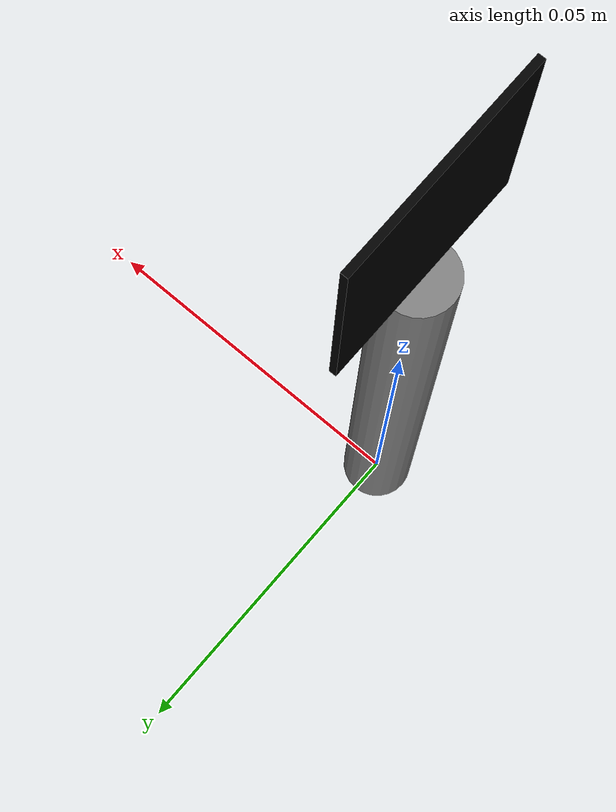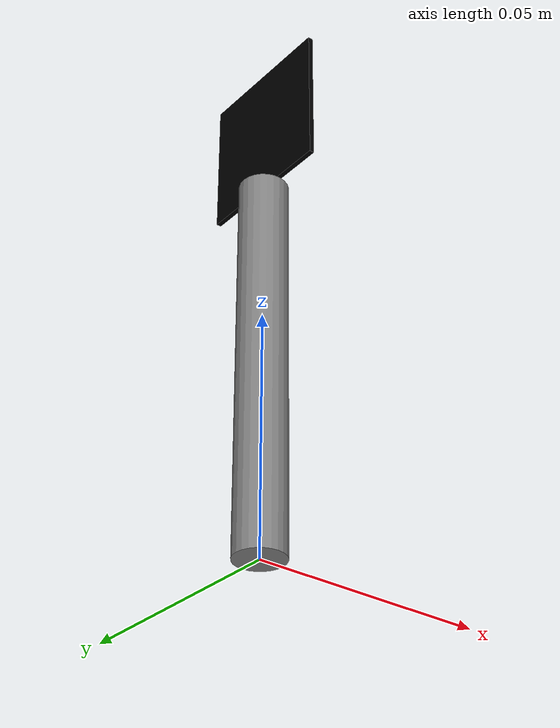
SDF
<?xml version="1.0" ?>
<sdf version="1.8">
  <model name="stop_sign">
    <static>true</static>

    <link name="pole">
      <pose>0 0 0.04 0 0 0</pose>
      <collision name="col">
        <geometry><cylinder><radius>0.005</radius><length>0.08</length></cylinder></geometry>
      </collision>
      <visual name="vis">
        <geometry><cylinder><radius>0.005</radius><length>0.08</length></cylinder></geometry>
        <material>
          <ambient>0.5 0.5 0.5 1</ambient>
          <diffuse>0.5 0.5 0.5 1</diffuse>
          <specular>0.1 0.1 0.1 1</specular>
        </material>
      </visual>
    </link>

    <link name="head">
      <pose>0 0 0.095 0 0 0</pose>
      <collision name="col">
        <geometry><box><size>0.001 0.03 0.03</size></box></geometry>
      </collision>
      <visual name="vis">
        <geometry><box><size>0.001 0.03 0.03</size></box></geometry>
        <material>
          <ambient>0 0 0 1</ambient>
          <diffuse>0 0 0 1</diffuse>
          <specular>0 0 0 0</specular>
          <emissive>1 1 1 1</emissive>
          <pbr>
            <metal>
              <emissive_map>../../textures/stop_sign.png</emissive_map>
              <metalness>0.0</metalness>
              <roughness>1.0</roughness>
            </metal>
          </pbr>
        </material>
      </visual>
    </link>
  </model>
</sdf>
